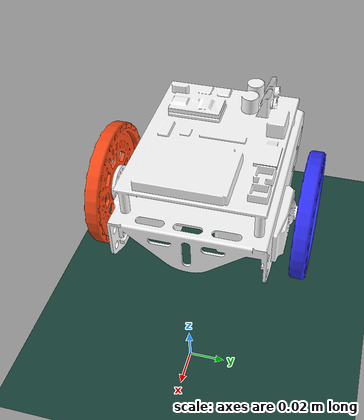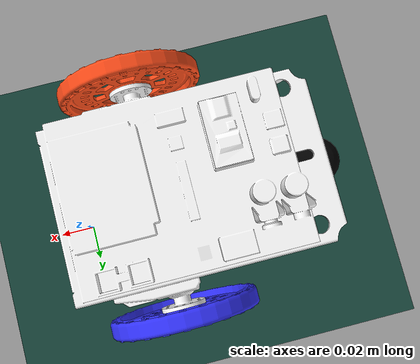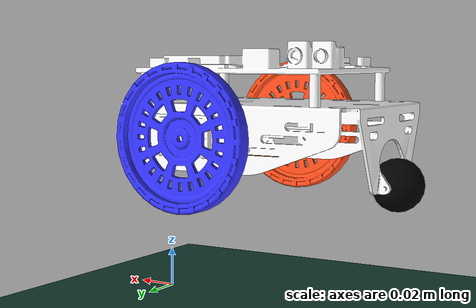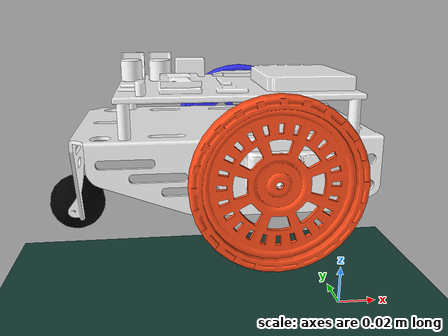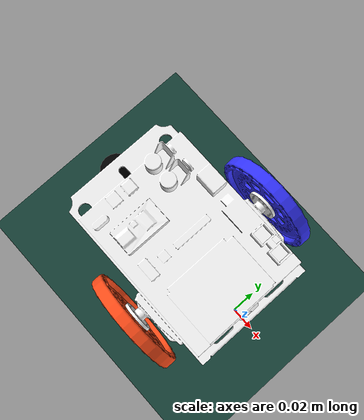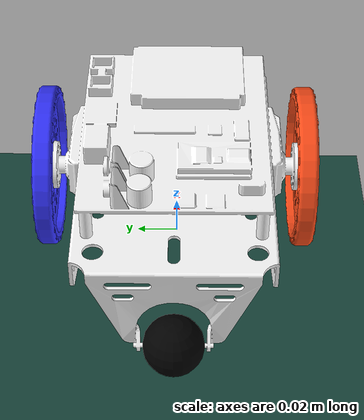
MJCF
<mujoco model="BB25">
    <!-- Mobile robot converted from URDF to MJCF -->
    <compiler angle="radian"/>
    <option timestep="0.002"/>

    <!-- Visual and collision assets -->
    <asset>
        <material name="green" rgba="0.094 0.27 0.23 1"/>
        <material name="white" rgba="1 1 1 1"/>
        <material name="orange" rgba="1 0.3 0.1 1"/>
        <material name="blue" rgba="0.2 0.2 1 1"/>
        <material name="black" rgba="0 0 0 1"/>

        <mesh name="chassis" file="chassis.stl"/>
        <mesh name="wheel" file="wheel.stl"/>
    </asset>

    <worldbody>
        <!-- Flat ground plane -->
        <geom name="ground" type="plane" size="5 5 0.1" material="green" contype="1" conaffinity="1"/>

        <!-- Root robot body is the chassis; has a freejoint so it can move in 3‑D -->
        <body name="chassis" pos="0 0 0.05">
            <freejoint name="base_free"/>

            <!-- Chassis geometry -->
            <geom name="chassis_geom" type="mesh" mesh="chassis" material="white" mass="1.0"/>

            <!-- Right wheel -->
            <body name="right_wheel" pos="-0.04645 -0.0555 0.035" euler="-1.570796327 0 0">
                <joint name="right" type="hinge" axis="0 0 1"/>
                <geom name="right_wheel_geom" type="mesh" mesh="wheel" material="orange" mass="0.1"/>
            </body>

            <!-- Left wheel -->
            <body name="left_wheel" pos="-0.04645 0.0555 0.035" euler="1.570796327 0 0">
                <joint name="left" type="hinge" axis="0 0 1"/>
                <geom name="left_wheel_geom" type="mesh" mesh="wheel" material="blue" mass="0.1"/>
            </body>

            <!-- Rear caster -->
            <body name="rear_wheel" pos="-0.130752 0 0.0127">
                <joint name="rear" type="hinge" axis="0 1 0"/>
                <geom name="rear_wheel_geom" type="sphere" size="0.0127" material="black" mass="0.1" friction="0.1 0 0"/>
            </body>
        </body>
    </worldbody>

    <actuator>
      <velocity name="right_motor" joint="right" gear="0.1" kv="5" ctrllimited="true" ctrlrange="-1 1"/>
      <velocity name="left_motor" joint="left" gear="-0.1" kv="5" ctrllimited="true" ctrlrange="-1 1"/>
    </actuator>

</mujoco>
